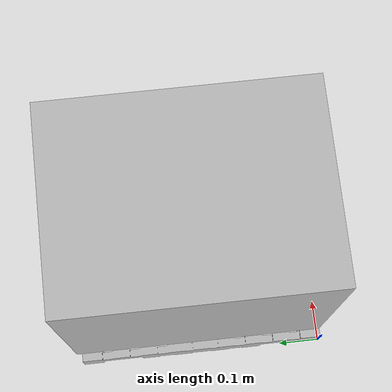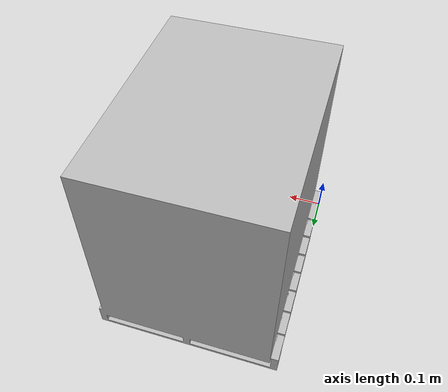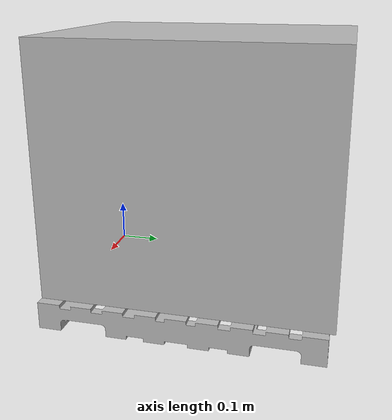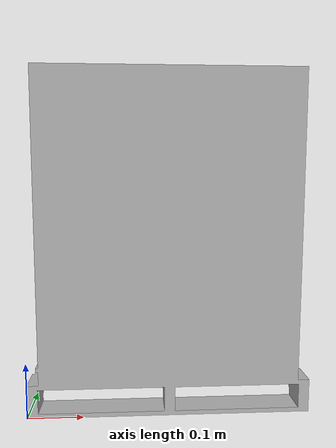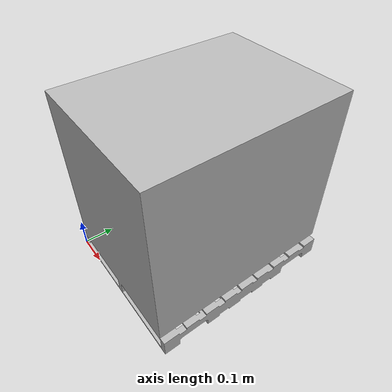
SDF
<?xml version="1.0" ?>
<sdf version="1.5">
  <model name="skid_udine_silica">
    <static>true</static>
    <link name="skid_udine_silica_link">
        <collision name="skid_udine_silica_collision">
         <geometry>
            <mesh>
                <uri>model://skid_udine_silica/meshes/model.dae</uri>
                <scale>0.5 0.5 0.5</scale>
            </mesh>
        </geometry>
      </collision>

      <visual name="skid_udine_silica_mesh">
        <cast_shadows>true</cast_shadows>
        <geometry>
            <mesh>
                <uri>model://skid_udine_silica/meshes/model.dae</uri>
                <scale>0.5 0.5 0.5</scale>
            </mesh>
        </geometry>
      </visual>
    </link>
  </model>
</sdf>
